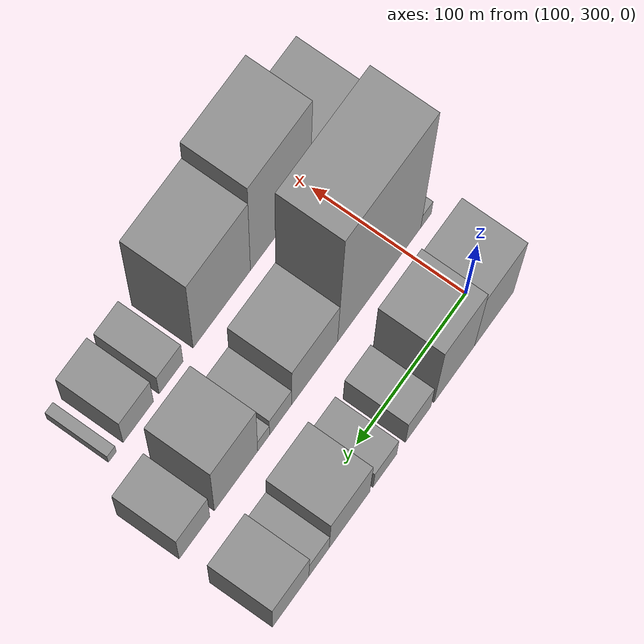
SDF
<sdf version="1.6">
 <world name="default">
  <model name="building_39">
   <static>1</static>
   <pose>100.0000 302.8785 0 0.000000 0.000000 0.000000</pose>
   <link name="link">
    <pose>0 0 51.00 0 0 0</pose>
    <collision name="collision"><geometry><box><size>40.0000 36.0310 102.0000</size></box></geometry></collision>
    <visual name="visual">
     <cast_shadows>0</cast_shadows>
     <geometry><box><size>40.0000 36.0310 102.0000</size></box></geometry>
     <material>
      <script>
       <uri>model://grey_wall/materials/scripts</uri>
       <uri>model://grey_wall/materials/textures</uri>
       <name>vrc/grey_wall</name>
      </script>
     </material>
    </visual>
   </link>
  </model>
  <model name="building_40">
   <static>1</static>
   <pose>100.0000 339.5356 0 0.000000 0.000000 0.000000</pose>
   <link name="link">
    <pose>0 0 57.00 0 0 0</pose>
    <collision name="collision"><geometry><box><size>40.0000 37.2832 114.0000</size></box></geometry></collision>
    <visual name="visual">
     <cast_shadows>0</cast_shadows>
     <geometry><box><size>40.0000 37.2832 114.0000</size></box></geometry>
     <material>
      <script>
       <uri>model://grey_wall/materials/scripts</uri>
       <uri>model://grey_wall/materials/textures</uri>
       <name>vrc/grey_wall</name>
      </script>
     </material>
    </visual>
   </link>
  </model>
  <model name="building_41">
   <static>1</static>
   <pose>100.0000 372.7177 0 0.000000 0.000000 0.000000</pose>
   <link name="link">
    <pose>0 0 22.50 0 0 0</pose>
    <collision name="collision"><geometry><box><size>40.0000 23.0812 45.0000</size></box></geometry></collision>
    <visual name="visual">
     <cast_shadows>0</cast_shadows>
     <geometry><box><size>40.0000 23.0812 45.0000</size></box></geometry>
     <material>
      <script>
       <uri>model://grey_wall/materials/scripts</uri>
       <uri>model://grey_wall/materials/textures</uri>
       <name>vrc/grey_wall</name>
      </script>
     </material>
    </visual>
   </link>
  </model>
  <model name="building_42">
   <static>1</static>
   <pose>100.0000 402.9499 0 0.000000 0.000000 0.000000</pose>
   <link name="link">
    <pose>0 0 18.00 0 0 0</pose>
    <collision name="collision"><geometry><box><size>40.0000 21.3832 36.0000</size></box></geometry></collision>
    <visual name="visual">
     <cast_shadows>0</cast_shadows>
     <geometry><box><size>40.0000 21.3832 36.0000</size></box></geometry>
     <material>
      <script>
       <uri>model://grey_wall/materials/scripts</uri>
       <uri>model://grey_wall/materials/textures</uri>
       <name>vrc/grey_wall</name>
      </script>
     </material>
    </visual>
   </link>
  </model>
  <model name="building_43">
   <static>1</static>
   <pose>100.0000 434.9707 0 0.000000 0.000000 0.000000</pose>
   <link name="link">
    <pose>0 0 34.50 0 0 0</pose>
    <collision name="collision"><geometry><box><size>40.0000 36.6584 69.0000</size></box></geometry></collision>
    <visual name="visual">
     <cast_shadows>0</cast_shadows>
     <geometry><box><size>40.0000 36.6584 69.0000</size></box></geometry>
     <material>
      <script>
       <uri>model://grey_wall/materials/scripts</uri>
       <uri>model://grey_wall/materials/textures</uri>
       <name>vrc/grey_wall</name>
      </script>
     </material>
    </visual>
   </link>
  </model>
  <model name="building_44">
   <static>1</static>
   <pose>100.0000 462.3307 0 0.000000 0.000000 0.000000</pose>
   <link name="link">
    <pose>0 0 18.00 0 0 0</pose>
    <collision name="collision"><geometry><box><size>40.0000 18.0616 36.0000</size></box></geometry></collision>
    <visual name="visual">
     <cast_shadows>0</cast_shadows>
     <geometry><box><size>40.0000 18.0616 36.0000</size></box></geometry>
     <material>
      <script>
       <uri>model://grey_wall/materials/scripts</uri>
       <uri>model://grey_wall/materials/textures</uri>
       <name>vrc/grey_wall</name>
      </script>
     </material>
    </visual>
   </link>
  </model>
  <model name="building_45">
   <static>1</static>
   <pose>100.0000 487.5318 0 0.000000 0.000000 0.000000</pose>
   <link name="link">
    <pose>0 0 28.50 0 0 0</pose>
    <collision name="collision"><geometry><box><size>40.0000 32.3405 57.0000</size></box></geometry></collision>
    <visual name="visual">
     <cast_shadows>0</cast_shadows>
     <geometry><box><size>40.0000 32.3405 57.0000</size></box></geometry>
     <material>
      <script>
       <uri>model://grey_wall/materials/scripts</uri>
       <uri>model://grey_wall/materials/textures</uri>
       <name>vrc/grey_wall</name>
      </script>
     </material>
    </visual>
   </link>
  </model>
  <model name="building_96">
   <static>1</static>
   <pose>160.0000 279.6976 0 0.000000 0.000000 0.000000</pose>
   <link name="link">
    <pose>0 0 12.00 0 0 0</pose>
    <collision name="collision"><geometry><box><size>40.0000 9.7062 24.0000</size></box></geometry></collision>
    <visual name="visual">
     <cast_shadows>0</cast_shadows>
     <geometry><box><size>40.0000 9.7062 24.0000</size></box></geometry>
     <material>
      <script>
       <uri>model://grey_wall/materials/scripts</uri>
       <uri>model://grey_wall/materials/textures</uri>
       <name>vrc/grey_wall</name>
      </script>
     </material>
    </visual>
   </link>
  </model>
  <model name="building_97">
   <static>1</static>
   <pose>160.0000 322.7968 0 0.000000 0.000000 0.000000</pose>
   <link name="link">
    <pose>0 0 103.50 0 0 0</pose>
    <collision name="collision"><geometry><box><size>40.0000 76.4921 207.0000</size></box></geometry></collision>
    <visual name="visual">
     <cast_shadows>0</cast_shadows>
     <geometry><box><size>40.0000 76.4921 207.0000</size></box></geometry>
     <material>
      <script>
       <uri>model://grey_wall/materials/scripts</uri>
       <uri>model://grey_wall/materials/textures</uri>
       <name>vrc/grey_wall</name>
      </script>
     </material>
    </visual>
   </link>
  </model>
  <model name="building_98">
   <static>1</static>
   <pose>160.0000 381.9251 0 0.000000 0.000000 0.000000</pose>
   <link name="link">
    <pose>0 0 39.00 0 0 0</pose>
    <collision name="collision"><geometry><box><size>40.0000 41.7645 78.0000</size></box></geometry></collision>
    <visual name="visual">
     <cast_shadows>0</cast_shadows>
     <geometry><box><size>40.0000 41.7645 78.0000</size></box></geometry>
     <material>
      <script>
       <uri>model://grey_wall/materials/scripts</uri>
       <uri>model://grey_wall/materials/textures</uri>
       <name>vrc/grey_wall</name>
      </script>
     </material>
    </visual>
   </link>
  </model>
  <model name="building_99">
   <static>1</static>
   <pose>160.0000 412.6772 0 0.000000 0.000000 0.000000</pose>
   <link name="link">
    <pose>0 0 18.00 0 0 0</pose>
    <collision name="collision"><geometry><box><size>40.0000 19.7398 36.0000</size></box></geometry></collision>
    <visual name="visual">
     <cast_shadows>0</cast_shadows>
     <geometry><box><size>40.0000 19.7398 36.0000</size></box></geometry>
     <material>
      <script>
       <uri>model://grey_wall/materials/scripts</uri>
       <uri>model://grey_wall/materials/textures</uri>
       <name>vrc/grey_wall</name>
      </script>
     </material>
    </visual>
   </link>
  </model>
  <model name="building_100">
   <static>1</static>
   <pose>160.0000 427.8865 0 0.000000 0.000000 0.000000</pose>
   <link name="link">
    <pose>0 0 12.00 0 0 0</pose>
    <collision name="collision"><geometry><box><size>40.0000 10.6787 24.0000</size></box></geometry></collision>
    <visual name="visual">
     <cast_shadows>0</cast_shadows>
     <geometry><box><size>40.0000 10.6787 24.0000</size></box></geometry>
     <material>
      <script>
       <uri>model://grey_wall/materials/scripts</uri>
       <uri>model://grey_wall/materials/textures</uri>
       <name>vrc/grey_wall</name>
      </script>
     </material>
    </visual>
   </link>
  </model>
  <model name="building_101">
   <static>1</static>
   <pose>160.0000 452.5409 0 0.000000 0.000000 0.000000</pose>
   <link name="link">
    <pose>0 0 51.00 0 0 0</pose>
    <collision name="collision"><geometry><box><size>40.0000 38.6302 102.0000</size></box></geometry></collision>
    <visual name="visual">
     <cast_shadows>0</cast_shadows>
     <geometry><box><size>40.0000 38.6302 102.0000</size></box></geometry>
     <material>
      <script>
       <uri>model://grey_wall/materials/scripts</uri>
       <uri>model://grey_wall/materials/textures</uri>
       <name>vrc/grey_wall</name>
      </script>
     </material>
    </visual>
   </link>
  </model>
  <model name="building_102">
   <static>1</static>
   <pose>160.0000 489.4130 0 0.000000 0.000000 0.000000</pose>
   <link name="link">
    <pose>0 0 27.00 0 0 0</pose>
    <collision name="collision"><geometry><box><size>40.0000 27.1138 54.0000</size></box></geometry></collision>
    <visual name="visual">
     <cast_shadows>0</cast_shadows>
     <geometry><box><size>40.0000 27.1138 54.0000</size></box></geometry>
     <material>
      <script>
       <uri>model://grey_wall/materials/scripts</uri>
       <uri>model://grey_wall/materials/textures</uri>
       <name>vrc/grey_wall</name>
      </script>
     </material>
    </visual>
   </link>
  </model>
  <model name="building_149">
   <static>1</static>
   <pose>220.0000 280.4697 0 0.000000 0.000000 0.000000</pose>
   <link name="link">
    <pose>0 0 42.00 0 0 0</pose>
    <collision name="collision"><geometry><box><size>40.0000 42.8583 84.0000</size></box></geometry></collision>
    <visual name="visual">
     <cast_shadows>0</cast_shadows>
     <geometry><box><size>40.0000 42.8583 84.0000</size></box></geometry>
     <material>
      <script>
       <uri>model://grey_wall/materials/scripts</uri>
       <uri>model://grey_wall/materials/textures</uri>
       <name>vrc/grey_wall</name>
      </script>
     </material>
    </visual>
   </link>
  </model>
  <model name="building_150">
   <static>1</static>
   <pose>220.0000 329.0296 0 0.000000 0.000000 0.000000</pose>
   <link name="link">
    <pose>0 0 79.50 0 0 0</pose>
    <collision name="collision"><geometry><box><size>40.0000 54.2614 159.0000</size></box></geometry></collision>
    <visual name="visual">
     <cast_shadows>0</cast_shadows>
     <geometry><box><size>40.0000 54.2614 159.0000</size></box></geometry>
     <material>
      <script>
       <uri>model://grey_wall/materials/scripts</uri>
       <uri>model://grey_wall/materials/textures</uri>
       <name>vrc/grey_wall</name>
      </script>
     </material>
    </visual>
   </link>
  </model>
  <model name="building_151">
   <static>1</static>
   <pose>220.0000 382.0455 0 0.000000 0.000000 0.000000</pose>
   <link name="link">
    <pose>0 0 66.00 0 0 0</pose>
    <collision name="collision"><geometry><box><size>40.0000 51.7706 132.0000</size></box></geometry></collision>
    <visual name="visual">
     <cast_shadows>0</cast_shadows>
     <geometry><box><size>40.0000 51.7706 132.0000</size></box></geometry>
     <material>
      <script>
       <uri>model://grey_wall/materials/scripts</uri>
       <uri>model://grey_wall/materials/textures</uri>
       <name>vrc/grey_wall</name>
      </script>
     </material>
    </visual>
   </link>
  </model>
  <model name="building_152">
   <static>1</static>
   <pose>220.0000 427.6225 0 0.000000 0.000000 0.000000</pose>
   <link name="link">
    <pose>0 0 19.50 0 0 0</pose>
    <collision name="collision"><geometry><box><size>40.0000 21.3834 39.0000</size></box></geometry></collision>
    <visual name="visual">
     <cast_shadows>0</cast_shadows>
     <geometry><box><size>40.0000 21.3834 39.0000</size></box></geometry>
     <material>
      <script>
       <uri>model://grey_wall/materials/scripts</uri>
       <uri>model://grey_wall/materials/textures</uri>
       <name>vrc/grey_wall</name>
      </script>
     </material>
    </visual>
   </link>
  </model>
  <model name="building_153">
   <static>1</static>
   <pose>220.0000 456.7875 0 0.000000 0.000000 0.000000</pose>
   <link name="link">
    <pose>0 0 24.00 0 0 0</pose>
    <collision name="collision"><geometry><box><size>40.0000 26.9465 48.0000</size></box></geometry></collision>
    <visual name="visual">
     <cast_shadows>0</cast_shadows>
     <geometry><box><size>40.0000 26.9465 48.0000</size></box></geometry>
     <material>
      <script>
       <uri>model://grey_wall/materials/scripts</uri>
       <uri>model://grey_wall/materials/textures</uri>
       <name>vrc/grey_wall</name>
      </script>
     </material>
    </visual>
   </link>
  </model>
  <model name="building_154">
   <static>1</static>
   <pose>220.0000 479.7477 0 0.000000 0.000000 0.000000</pose>
   <link name="link">
    <pose>0 0 7.50 0 0 0</pose>
    <collision name="collision"><geometry><box><size>40.0000 6.9739 15.0000</size></box></geometry></collision>
    <visual name="visual">
     <cast_shadows>0</cast_shadows>
     <geometry><box><size>40.0000 6.9739 15.0000</size></box></geometry>
     <material>
      <script>
       <uri>model://grey_wall/materials/scripts</uri>
       <uri>model://grey_wall/materials/textures</uri>
       <name>vrc/grey_wall</name>
      </script>
     </material>
    </visual>
   </link>
  </model>
 </world>
</sdf>
